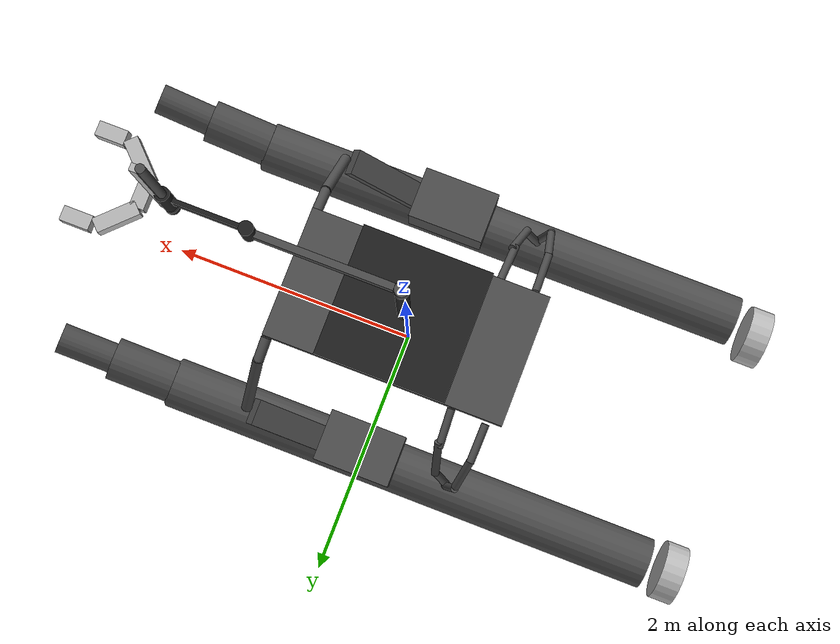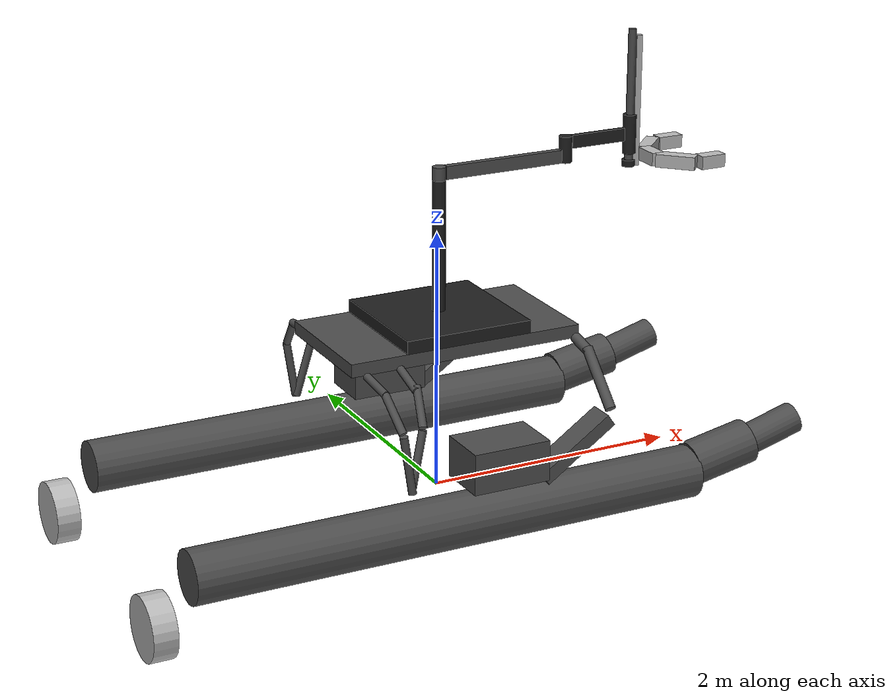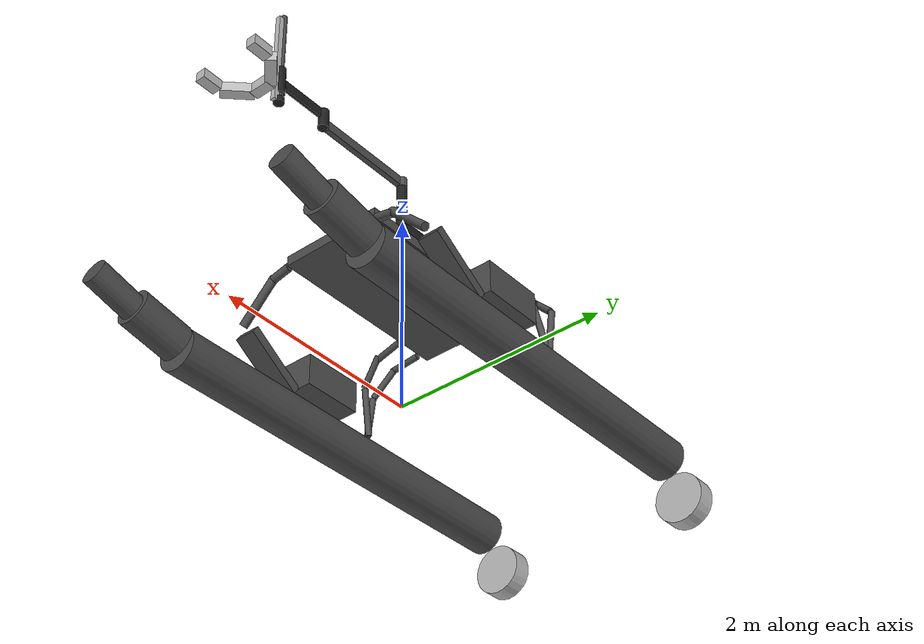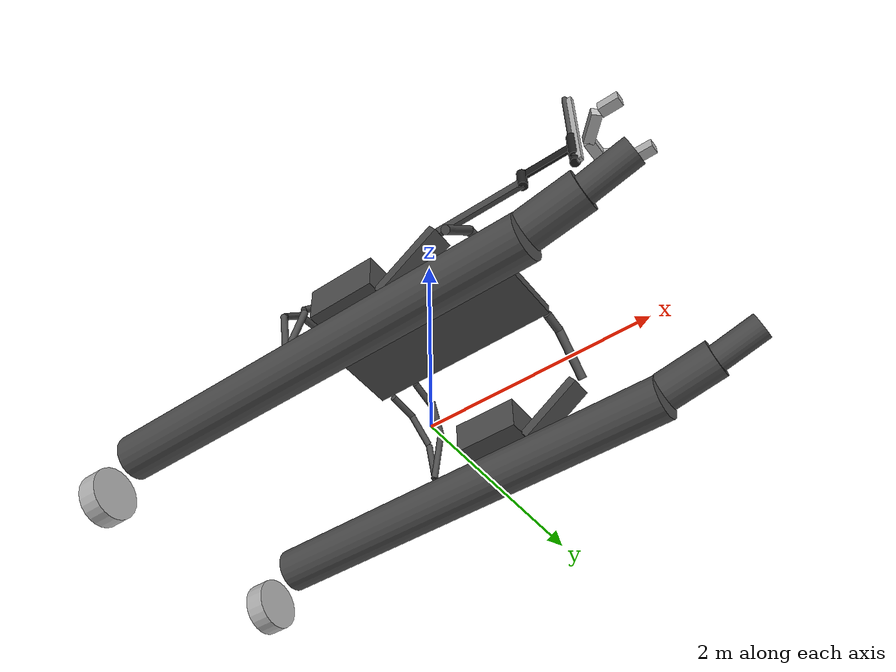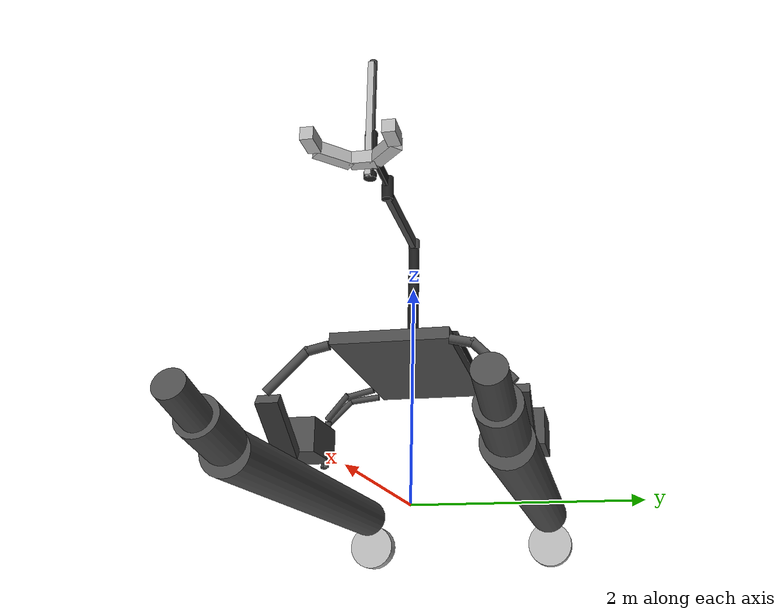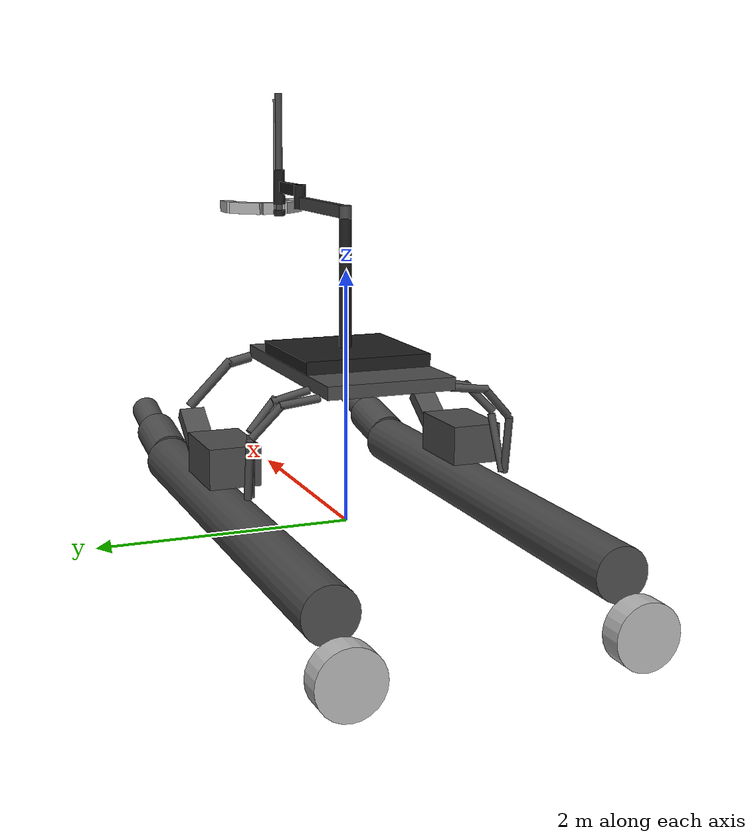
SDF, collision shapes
<sdf version='1.6'>
  <model name='boat'>
    <link name='base_link'>
      <pose>0 0 0 0 -0 0</pose>
      <inertial>
        <pose >0 0 0.124229 0 -0 0</pose>
        <mass>227</mass>
        <inertia>
          <ixx>181.42</ixx>
          <ixy>0</ixy>
          <ixz>0</ixz>
          <iyy>408.203</iyy>
          <iyz>0</iyz>
          <izz>495.037</izz>
        </inertia>
      </inertial>
      <collision name='base_link_fixed_joint_lump__left_float_collision'>
        <pose >-0.4 1.03 0.2 3.14159 1.57079 3.14159</pose>
        <geometry>
          <cylinder>
            <length>4</length>
            <radius>0.2</radius>
          </cylinder>
        </geometry>
      </collision>
      <collision name='base_link_fixed_joint_lump__left_mid_float_collision_1'>
        <pose>1.85 1.03 0.3 0 1.38 0</pose>
        <geometry>
          <cylinder>
            <length>0.5</length>
            <radius>0.17</radius>
          </cylinder>
        </geometry>
      </collision>
      <collision name='base_link_fixed_joint_lump__left_front_float_collision_2'>
        <pose>2.3 1.03 0.4 0 1.3 0</pose>
        <geometry>
          <cylinder>
            <length>0.45</length>
            <radius>0.12</radius>
          </cylinder>
        </geometry>
      </collision>
      <collision name='base_link_fixed_joint_lump__front_left_beam_lower_collision_3'>
        <pose>0.9 0.85 1 0.78 -0 0</pose>
        <geometry>
          <cylinder>
            <length>0.5</length>
            <radius>0.04</radius>
          </cylinder>
        </geometry>
      </collision>
      <collision name='base_link_fixed_joint_lump__front_left_beam_upper_collision_4'>
        <pose>0.9 0.6 1.18 1.35 -0 0</pose>
        <geometry>
          <cylinder>
            <length>0.2</length>
            <radius>0.04</radius>
          </cylinder>
        </geometry>
      </collision>
      <collision name='base_link_fixed_joint_lump__mid_left_beam_lower_collision_5'>
        <pose>-0.65 0.99 0.7 0.1 0.25 0</pose>
        <geometry>
          <cylinder>
            <length>0.45</length>
            <radius>0.03</radius>
          </cylinder>
        </geometry>
      </collision>
      <collision name='base_link_fixed_joint_lump__mid_left_beam_medium_collision_6'>
        <pose>-0.57 0.87 1.05 0.75 0.25 0</pose>
        <geometry>
          <cylinder>
            <length>0.32</length>
            <radius>0.03</radius>
          </cylinder>
        </geometry>
      </collision>
      <collision name='base_link_fixed_joint_lump__mid_left_beam_upper_collision_7'>
        <pose>-0.55 0.65 1.17 1.35 0.25 0</pose>
        <geometry>
          <cylinder>
            <length>0.3</length>
            <radius>0.03</radius>
          </cylinder>
        </geometry>
      </collision>
      <collision name='base_link_fixed_joint_lump__rear_left_beam_lower_collision_8'>
        <pose>-0.74 1.03 0.7 0 -0.15 0</pose>
        <geometry>
          <cylinder>
            <length>0.45</length>
            <radius>0.03</radius>
          </cylinder>
        </geometry>
      </collision>
      <collision name='base_link_fixed_joint_lump__rear_left_beam_medium_collision_9'>
        <pose>-0.79 0.91 1.05 0.75 -0.15 -0</pose>
        <geometry>
          <cylinder>
            <length>0.32</length>
            <radius>0.03</radius>
          </cylinder>
        </geometry>
      </collision>
      <collision name='base_link_fixed_joint_lump__rear_left_beam_upper_collision_10'>
        <pose>-0.81 0.67 1.18 1.45 -0.15 0</pose>
        <geometry>
          <cylinder>
            <length>0.3</length>
            <radius>0.03</radius>
          </cylinder>
        </geometry>
      </collision>
      <collision name='base_link_fixed_joint_lump__left_joint_collision_11'>
        <pose>0.58 1.03 0.6 0 -0.6 0</pose>
        <geometry>
          <box>
            <size>0.65 0.2 0.1</size>
          </box>
        </geometry>
      </collision>
      <collision name='base_link_fixed_joint_lump__right_float_collision_12'>
        <pose>-0.4 -1.03 0.2 3.14159 1.57079 3.14159</pose>
        <geometry>
          <cylinder>
            <length>4</length>
            <radius>0.2</radius>
          </cylinder>
        </geometry>
      </collision>
      <collision name='base_link_fixed_joint_lump__right_mid_float_collision_13'>
        <pose>1.85 -1.03 0.3 0 1.38 0</pose>
        <geometry>
          <cylinder>
            <length>0.5</length>
            <radius>0.17</radius>
          </cylinder>
        </geometry>
      </collision>
      <collision name='base_link_fixed_joint_lump__right_front_float_collision_14'>
        <pose>2.3 -1.03 0.4 0 1.3 0</pose>
        <geometry>
          <cylinder>
            <length>0.45</length>
            <radius>0.12</radius>
          </cylinder>
        </geometry>
      </collision>
      <collision name='base_link_fixed_joint_lump__front_right_beam_lower_collision_15'>
        <pose>0.9 -0.85 1 -0.78 0 0</pose>
        <geometry>
          <cylinder>
            <length>0.5</length>
            <radius>0.04</radius>
          </cylinder>
        </geometry>
      </collision>
      <collision name='base_link_fixed_joint_lump__front_right_beam_upper_collision_16'>
        <pose>0.9 -0.6 1.18 -1.35 0 0</pose>
        <geometry>
          <cylinder>
            <length>0.2</length>
            <radius>0.04</radius>
          </cylinder>
        </geometry>
      </collision>
      <collision name='base_link_fixed_joint_lump__mid_right_beam_lower_collision_17'>
        <pose>-0.65 -0.99 0.7 -0.1 0.25 0</pose>
        <geometry>
          <cylinder>
            <length>0.45</length>
            <radius>0.03</radius>
          </cylinder>
        </geometry>
      </collision>
      <collision name='base_link_fixed_joint_lump__mid_right_beam_medium_collision_18'>
        <pose>-0.57 -0.87 1.05 -0.75 0.25 0</pose>
        <geometry>
          <cylinder>
            <length>0.32</length>
            <radius>0.03</radius>
          </cylinder>
        </geometry>
      </collision>
      <collision name='base_link_fixed_joint_lump__mid_right_beam_upper_collision_19'>
        <pose>-0.55 -0.65 1.17 -1.35 0.25 0</pose>
        <geometry>
          <cylinder>
            <length>0.3</length>
            <radius>0.03</radius>
          </cylinder>
        </geometry>
      </collision>
      <collision name='base_link_fixed_joint_lump__rear_right_beam_lower_collision_20'>
        <pose>-0.74 -1.03 0.7 0 -0.15 0</pose>
        <geometry>
          <cylinder>
            <length>0.45</length>
            <radius>0.03</radius>
          </cylinder>
        </geometry>
      </collision>
      <collision name='base_link_fixed_joint_lump__rear_right_beam_medium_collision_21'>
        <pose>-0.79 -0.91 1.05 -0.75 -0.15 0</pose>
        <geometry>
          <cylinder>
            <length>0.32</length>
            <radius>0.03</radius>
          </cylinder>
        </geometry>
      </collision>
      <collision name='base_link_fixed_joint_lump__rear_right_beam_upper_collision_22'>
        <pose>-0.81 -0.67 1.18 -1.45 -0.15 0</pose>
        <geometry>
          <cylinder>
            <length>0.3</length>
            <radius>0.03</radius>
          </cylinder>
        </geometry>
      </collision>
      <collision name='base_link_fixed_joint_lump__right_joint_collision_23'>
        <pose>0.58 -1.03 0.6 0 -0.6 0</pose>
        <geometry>
          <box>
            <size>0.65 0.2 0.1</size>
          </box>
        </geometry>
      </collision>
      <collision name='base_link_fixed_joint_lump__top_base_collision_24'>
        <pose>0 0 1.25 0 -0 0</pose>
        <geometry>
          <box>
            <size>1.85 1 0.1</size>
          </box>
        </geometry>
      </collision>
      <collision name='base_link_fixed_joint_lump__left_battery_collision_collision_25'>
        <pose>0 1 0.6 0 -0 0</pose>
        <geometry>
          <box>
            <size>0.6 0.4 0.31</size>
          </box>
        </geometry>
      </collision>
      <collision name='base_link_fixed_joint_lump__right_battery_collision_collision_26'>
        <pose>0 -1 0.6 0 -0 0</pose>
        <geometry>
          <box>
            <size>0.6 0.4 0.31</size>
          </box>
        </geometry>
      </collision>
      <visual name='base_link_fixed_joint_lump__dummy_link_visual'>
        <pose>0 0 0 0 -0 0</pose>
        <geometry>
          <mesh>
            <scale>1 1 1</scale>
            <uri>model://boat/meshes/body.dae</uri>
          </mesh>
        </geometry>
      </visual>
      <visual name='base_link_fixed_joint_lump__left_battery_visual_visual_1'>
        <pose>0 -0.03 0 0 -0 0</pose>
        <geometry>
          <mesh>
            <scale>1 1 1</scale>
            <uri>model://boat/meshes/battery.dae</uri>
          </mesh>
        </geometry>
        <material>
          <script>
            <name>Gazebo/DarkGrey</name>
            <uri>__default__</uri>
          </script>
        </material>
      </visual>
      <visual name='base_link_fixed_joint_lump__right_battery_visual_visual_2'>
        <pose>0 -2.03 0 0 -0 0</pose>
        <geometry>
          <mesh>
            <scale>1 1 1</scale>
            <uri>model://boat/meshes/battery.dae</uri>
          </mesh>
        </geometry>
        <material>
          <script>
            <name>Gazebo/DarkGrey</name>
            <uri>__default__</uri>
          </script>
        </material>
      </visual>
      <visual name='right_engine_link_visual'>
        <pose>-2.37378 -1.02713 0.318237 0 -0 0</pose>
        <geometry>
          <mesh>
            <scale>1 1 1</scale>
            <uri>model://boat/meshes//engine.dae</uri>
          </mesh>
        </geometry>
      </visual>
      <visual name='left_engine_link_visual'>
        <pose>-2.37378 1.02713 0.318237 0 -0 0</pose>
        <geometry>
          <mesh>
            <scale>1 1 1</scale>
            <uri>model://boat/meshes//engine.dae</uri>
          </mesh>
        </geometry>
      </visual>
    </link>
    <link name='left_propeller_link'>
      <pose>-2.65193 1.02713 -0.191134 0 1.57079 0</pose>
      <inertial>
        <pose>0 0 0 0 -0 0</pose>
        <mass>0.5</mass>
        <inertia>
          <ixx>0.008545</ixx>
          <ixy>0</ixy>
          <ixz>0</ixz>
          <iyy>0.008545</iyy>
          <iyz>0</iyz>
          <izz>0.0144</izz>
        </inertia>
      </inertial>
      <collision name='left_propeller_link_fixed_joint_lump__left_propeller_collision_collision'>
        <pose>-0.08 0 0 3.14159 0.0 3.14159</pose>
        <geometry>
          <cylinder>
            <length>0.18</length>
            <radius>0.24</radius>
          </cylinder>
        </geometry>
      </collision>
      <visual name='left_propeller_link_visual'>
        <pose>0 0 0 0 -1.57079 0</pose>
        <geometry>
          <mesh>
            <scale>1 1 1</scale>
            <uri>model://boat/meshes/propeller.dae</uri>
          </mesh>
        </geometry>
      </visual>
    </link>

    <joint name='left_engine_propeller_joint' type='revolute'>
      <child>left_propeller_link</child>
      <parent>base_link</parent>
      <axis>
        <xyz>1 0 0</xyz>
        <limit>
          <lower>-1e+16</lower>
          <upper>1e+16</upper>
        </limit>
        <dynamics>
          <spring_reference>0</spring_reference>
          <spring_stiffness>0</spring_stiffness>
        </dynamics>
        <use_parent_model_frame>1</use_parent_model_frame>
      </axis>
    </joint>
    <link name='right_propeller_link'>
      <pose>-2.65193 -1.02713 -0.191134 0 1.57079 0</pose>
      <inertial>
        <pose>0 0 0 0 -0 0</pose>
        <mass>0.5</mass>
        <inertia>
          <ixx>0.008545</ixx>
          <ixy>0</ixy>
          <ixz>0</ixz>
          <iyy>0.008545</iyy>
          <iyz>0</iyz>
          <izz>0.0144</izz>
        </inertia>
      </inertial>
      <collision name='right_propeller_link_fixed_joint_lump__right_propeller_collision_collision'>
        <pose>-0.08 0 0 3.14159 0.0 3.14159</pose>
        <geometry>
          <cylinder>
            <length>0.18</length>
            <radius>0.24</radius>
          </cylinder>
        </geometry>
      </collision>
      <visual name='right_propeller_link_visual'>
        <pose>0 0 0 0 -1.57079 0</pose>
        <geometry>
          <mesh>
            <scale>1 1 1</scale>
            <uri>model://boat/meshes/propeller.dae</uri>
          </mesh>
        </geometry>
      </visual>
    </link>
    <link name='boat/imu_link'>
      <pose>0 0 0 0 0 0</pose>
      <inertial>
        <pose>0 0 0 0 0 0</pose>
        <mass>0.015</mass>
        <inertia>
          <ixx>1e-05</ixx>
          <ixy>0</ixy>
          <ixz>0</ixz>
          <iyy>1e-05</iyy>
          <iyz>0</iyz>
          <izz>1e-05</izz>
        </inertia>
      </inertial>
    </link>
    <joint name='right_engine_propeller_joint' type='revolute'>
      <child>right_propeller_link</child>
      <parent>base_link</parent>
      <axis>
        <xyz>1 0 0</xyz>
        <limit>
          <lower>-1e+16</lower>
          <upper>1e+16</upper>
        </limit>
        <dynamics>
          <spring_reference>0</spring_reference>
          <spring_stiffness>0</spring_stiffness>
        </dynamics>
        <use_parent_model_frame>1</use_parent_model_frame>
      </axis>
    </joint>
    <joint name='boat/imu_joint' type='revolute'>
      <child>boat/imu_link</child>
      <parent>base_link</parent>
      <axis>
        <xyz>1 0 0</xyz>
        <limit>
          <lower>0</lower>
          <upper>0</upper>
          <effort>0</effort>
          <velocity>0</velocity>
        </limit>
        <dynamics>
          <spring_reference>0</spring_reference>
          <spring_stiffness>0</spring_stiffness>
        </dynamics>
        <use_parent_model_frame>1</use_parent_model_frame>
      </axis>
    </joint>

    <link name="realsense_link">
      <pose>0.3 0 1.4 0 0 0</pose>

      <inertial>
        <pose>0 0 0 0 0 0</pose>
        <mass>0.015</mass>
        <inertia>
          <ixx>1e-05</ixx>
          <ixy>0</ixy>
          <ixz>0</ixz>
          <iyy>1e-05</iyy>
          <iyz>0</iyz>
          <izz>1e-05</izz>
        </inertia>
      </inertial>

      <visual name='visual'>
        <geometry>
          <box>
            <size>0.01 0.01 0.01</size>
          </box>
        </geometry>
      </visual>

      <sensor name="depth_camera" type="depth">
        <update_rate>30</update_rate>
        <camera>
          <horizontal_fov>1.02974</horizontal_fov>
          <image>
            <format>R8G8B8</format>
            <width>640</width>
            <height>480</height>
          </image>
          <clip>
            <near>0.5</near>
            <far>18</far>
          </clip>
        </camera>
        <plugin filename="libgazebo_ros_openni_kinect.so" name="camera_controller">
          <cameraName>camera</cameraName>
          <alwaysOn>true</alwaysOn>
          <updateRate>20</updateRate>
          <pointCloudCutoff>0.2</pointCloudCutoff>
          <pointCloudCutoffMax>20</pointCloudCutoffMax>
          <imageTopicName>rgb/image_raw</imageTopicName>
          <cameraInfoTopicName>rgb/camera_info</cameraInfoTopicName>
          <depthImageTopicName>depth/image_raw</depthImageTopicName>
          <depthImageCameraInfoTopicName>depth/camera_info</depthImageCameraInfoTopicName>
          <pointCloudTopicName>depth/points</pointCloudTopicName>
          <frameName>camera_link</frameName>
          <distortion_k1>0.0</distortion_k1>
          <distortion_k2>0.0</distortion_k2>
          <distortion_k3>0.0</distortion_k3>
          <distortion_t1>0.0</distortion_t1>
          <distortion_t2>0.0</distortion_t2>
        </plugin>
      </sensor>
    </link>

    <joint type="fixed" name="realsense_joint">
      <parent>base_link</parent>
      <child>realsense_link</child>
      <pose>0 0 0 0 0 0</pose>
      <axis>
        <xyz>0 0 1</xyz>
      </axis>
    </joint>

    <include>
      <uri>model://gps</uri>
      <pose>0 0 0.12 0 0 0</pose>
      <name>gps</name>
    </include>
    <joint name='gps_joint' type='fixed'>
      <child>gps::link</child>
      <parent>base_link</parent>
    </joint>

     <model name='simple_arm_gripper'>
      <frame name='simple_arm::__model__' attached_to='simple_arm::arm_base'>
        <pose relative_to='__model__'>0 0 0 0 -0 0</pose>
      </frame>
      <link name='simple_arm::arm_base'>
        <inertial>
          <pose>0 0 0.00099 0 -0 0</pose>
          <inertia>
            <ixx>1.11</ixx>
            <ixy>0</ixy>
            <ixz>0</ixz>
            <iyy>3.11</iyy>
            <iyz>0</iyz>
            <izz>1.01</izz>
          </inertia>
          <mass>3</mass>
        </inertial>
        <collision name='arm_base_geom'>
          <pose>0 0 0.05 0 -0 0</pose>
          <geometry>
            <box>
              <size>1 1 0.1</size>
            </box>
          </geometry>
          <max_contacts>10</max_contacts>
          <surface>
            <contact>
              <ode/>
            </contact>
            <bounce/>
            <friction>
              <torsional>
                <ode/>
              </torsional>
              <ode/>
            </friction>
          </surface>
        </collision>
        <visual name='arm_base_geom_visual'>
          <pose>0 0 0.05 0 -0 0</pose>
          <geometry>
            <box>
              <size>1 1 0.1</size>
            </box>
          </geometry>
          <material>
            <script>
              <uri>file://media/materials/scripts/gazebo.material</uri>
              <name>Gazebo/Black</name>
            </script>
          </material>
        </visual>
        <collision name='arm_base_geom_arm_trunk'>
          <pose>0 0 0.6 0 -0 0</pose>
          <geometry>
            <cylinder>
              <radius>0.05</radius>
              <length>1</length>
            </cylinder>
          </geometry>
          <max_contacts>10</max_contacts>
          <surface>
            <contact>
              <ode/>
            </contact>
            <bounce/>
            <friction>
              <torsional>
                <ode/>
              </torsional>
              <ode/>
            </friction>
          </surface>
        </collision>
        <visual name='arm_base_geom_arm_trunk_visual'>
          <pose>0 0 0.6 0 -0 0</pose>
          <geometry>
            <cylinder>
              <radius>0.05</radius>
              <length>1</length>
            </cylinder>
          </geometry>
          <material>
            <script>
              <uri>file://media/materials/scripts/gazebo.material</uri>
              <name>Gazebo/Black</name>
            </script>
          </material>
        </visual>
        <pose>0 0 0 0 -0 0</pose>
        <self_collide>0</self_collide>
        <enable_wind>0</enable_wind>
        <kinematic>0</kinematic>
      </link>
      <link name='simple_arm::arm_shoulder_pan'>
        <pose>0 0 1.1 0 -0 0</pose>
        <inertial>
          <pose>0.045455 0 0 0 -0 0</pose>
          <inertia>
            <ixx>0.011</ixx>
            <ixy>0</ixy>
            <ixz>0</ixz>
            <iyy>0.0225</iyy>
            <iyz>0</iyz>
            <izz>0.0135</izz>
          </inertia>
          <mass>1</mass>
        </inertial>
        <collision name='arm_shoulder_pan_geom'>
          <pose>0 0 0.05 0 -0 0</pose>
          <geometry>
            <cylinder>
              <radius>0.05</radius>
              <length>0.1</length>
            </cylinder>
          </geometry>
          <max_contacts>10</max_contacts>
          <surface>
            <contact>
              <ode/>
            </contact>
            <bounce/>
            <friction>
              <torsional>
                <ode/>
              </torsional>
              <ode/>
            </friction>
          </surface>
        </collision>
        <visual name='arm_shoulder_pan_geom_visual'>
          <pose>0 0 0.05 0 -0 0</pose>
          <geometry>
            <cylinder>
              <radius>0.05</radius>
              <length>0.1</length>
            </cylinder>
          </geometry>
          <material>
            <script>
              <uri>file://media/materials/scripts/gazebo.material</uri>
              <name>Gazebo/DarkGrey</name>
            </script>
          </material>
        </visual>
        <collision name='arm_shoulder_pan_geom_arm_shoulder'>
          <pose>0.55 0 0.05 0 -0 0</pose>
          <geometry>
            <box>
              <size>1 0.05 0.1</size>
            </box>
          </geometry>
          <max_contacts>10</max_contacts>
          <surface>
            <contact>
              <ode/>
            </contact>
            <bounce/>
            <friction>
              <torsional>
                <ode/>
              </torsional>
              <ode/>
            </friction>
          </surface>
        </collision>
        <visual name='arm_shoulder_pan_geom_arm_shoulder_visual'>
          <pose>0.55 0 0.05 0 -0 0</pose>
          <geometry>
            <box>
              <size>1 0.05 0.1</size>
            </box>
          </geometry>
          <material>
            <script>
              <uri>file://media/materials/scripts/gazebo.material</uri>
              <name>Gazebo/DarkGrey</name>
            </script>
          </material>
        </visual>
        <self_collide>0</self_collide>
        <enable_wind>0</enable_wind>
        <kinematic>0</kinematic>
      </link>
      <link name='simple_arm::arm_elbow_pan'>
        <pose>1.05 0 1.1 0 -0 0</pose>
        <inertial>
          <pose>0.0875 0 0.083333 0 -0 0</pose>
          <inertia>
            <ixx>0.031</ixx>
            <ixy>0</ixy>
            <ixz>0.005</ixz>
            <iyy>0.07275</iyy>
            <iyz>0</iyz>
            <izz>0.04475</izz>
          </inertia>
          <mass>1</mass>
        </inertial>
        <collision name='arm_elbow_pan_geom'>
          <pose>0 0 0.1 0 -0 0</pose>
          <geometry>
            <cylinder>
              <radius>0.05</radius>
              <length>0.2</length>
            </cylinder>
          </geometry>
          <max_contacts>10</max_contacts>
          <surface>
            <contact>
              <ode/>
            </contact>
            <bounce/>
            <friction>
              <torsional>
                <ode/>
              </torsional>
              <ode/>
            </friction>
          </surface>
        </collision>
        <visual name='arm_elbow_pan_geom_visual'>
          <pose>0 0 0.1 0 -0 0</pose>
          <geometry>
            <cylinder>
              <radius>0.05</radius>
              <length>0.2</length>
            </cylinder>
          </geometry>
          <material>
            <script>
              <uri>file://media/materials/scripts/gazebo.material</uri>
              <name>Gazebo/Black</name>
            </script>
          </material>
        </visual>
        <collision name='arm_elbow_pan_geom_arm_elbow'>
          <pose>0.3 0 0.15 0 -0 0</pose>
          <geometry>
            <box>
              <size>0.5 0.03 0.1</size>
            </box>
          </geometry>
          <max_contacts>10</max_contacts>
          <surface>
            <contact>
              <ode/>
            </contact>
            <bounce/>
            <friction>
              <torsional>
                <ode/>
              </torsional>
              <ode/>
            </friction>
          </surface>
        </collision>
        <visual name='arm_elbow_pan_geom_arm_elbow_visual'>
          <pose>0.3 0 0.15 0 -0 0</pose>
          <geometry>
            <box>
              <size>0.5 0.03 0.1</size>
            </box>
          </geometry>
          <material>
            <script>
              <uri>file://media/materials/scripts/gazebo.material</uri>
              <name>Gazebo/DarkGrey</name>
            </script>
          </material>
        </visual>
        <collision name='arm_elbow_pan_geom_arm_wrist'>
          <pose>0.55 0 0.15 0 -0 0</pose>
          <geometry>
            <cylinder>
              <radius>0.05</radius>
              <length>0.3</length>
            </cylinder>
          </geometry>
          <max_contacts>10</max_contacts>
          <surface>
            <contact>
              <ode/>
            </contact>
            <bounce/>
            <friction>
              <torsional>
                <ode/>
              </torsional>
              <ode/>
            </friction>
          </surface>
        </collision>
        <visual name='arm_elbow_pan_geom_arm_wrist_visual'>
          <pose>0.55 0 0.15 0 -0 0</pose>
          <geometry>
            <cylinder>
              <radius>0.05</radius>
              <length>0.3</length>
            </cylinder>
          </geometry>
          <material>
            <script>
              <uri>file://media/materials/scripts/gazebo.material</uri>
              <name>Gazebo/Black</name>
            </script>
          </material>
        </visual>
        <self_collide>0</self_collide>
        <enable_wind>0</enable_wind>
        <kinematic>0</kinematic>
      </link>
      <link name='simple_arm::arm_wrist_lift'>
        <pose>1.6 0 1.05 0 -0 0</pose>
        <inertial>
          <pose>0 0 0 0 -0 0</pose>
          <inertia>
            <ixx>0.01</ixx>
            <ixy>0</ixy>
            <ixz>0</ixz>
            <iyy>0.01</iyy>
            <iyz>0</iyz>
            <izz>0.001</izz>
          </inertia>
          <mass>0.1</mass>
        </inertial>
        <collision name='arm_wrist_lift_geom'>
          <pose>0 0 0.5 0 -0 0</pose>
          <geometry>
            <cylinder>
              <radius>0.03</radius>
              <length>1</length>
            </cylinder>
          </geometry>
          <max_contacts>10</max_contacts>
          <surface>
            <contact>
              <ode/>
            </contact>
            <bounce/>
            <friction>
              <torsional>
                <ode/>
              </torsional>
              <ode/>
            </friction>
          </surface>
        </collision>
        <visual name='arm_wrist_lift_geom_visual'>
          <pose>0 0 0.5 0 -0 0</pose>
          <geometry>
            <cylinder>
              <radius>0.03</radius>
              <length>1</length>
            </cylinder>
          </geometry>
          <material>
            <script>
              <uri>file://media/materials/scripts/gazebo.material</uri>
              <name>Gazebo/DarkGrey</name>
            </script>
          </material>
        </visual>
        <self_collide>0</self_collide>
        <enable_wind>0</enable_wind>
        <kinematic>0</kinematic>
      </link>
      <link name='simple_arm::arm_wrist_roll'>
        <pose>1.6 0 1 0 -0 0</pose>
        <inertial>
          <pose>0 0 0 0 -0 0</pose>
          <inertia>
            <ixx>0.01</ixx>
            <ixy>0</ixy>
            <ixz>0</ixz>
            <iyy>0.01</iyy>
            <iyz>0</iyz>
            <izz>0.001</izz>
          </inertia>
          <mass>0.1</mass>
        </inertial>
        <collision name='arm_wrist_roll_geom'>
          <pose>0 0 0.025 0 -0 0</pose>
          <geometry>
            <cylinder>
              <radius>0.05</radius>
              <length>0.05</length>
            </cylinder>
          </geometry>
          <max_contacts>10</max_contacts>
          <surface>
            <contact>
              <ode/>
            </contact>
            <bounce/>
            <friction>
              <torsional>
                <ode/>
              </torsional>
              <ode/>
            </friction>
          </surface>
        </collision>
        <visual name='arm_wrist_roll_geom_visual'>
          <pose>0 0 0.025 0 -0 0</pose>
          <geometry>
            <cylinder>
              <radius>0.05</radius>
              <length>0.05</length>
            </cylinder>
          </geometry>
          <material>
            <script>
              <uri>file://media/materials/scripts/gazebo.material</uri>
              <name>Gazebo/Black</name>
            </script>
          </material>
        </visual>
        <self_collide>0</self_collide>
        <enable_wind>0</enable_wind>
        <kinematic>0</kinematic>
      </link>
      <joint name='simple_arm::arm_shoulder_pan_joint' type='revolute'>
        <parent>simple_arm::arm_base</parent>
        <child>simple_arm::arm_shoulder_pan</child>
        <axis>
          <dynamics>
            <damping>1</damping>
            <friction>0</friction>
            <spring_reference>0</spring_reference>
            <spring_stiffness>0</spring_stiffness>
          </dynamics>
          <xyz>0 0 1</xyz>
          <limit>
            <lower>-1e+16</lower>
            <upper>1e+16</upper>
          </limit>
        </axis>
      </joint>
      <joint name='simple_arm::arm_elbow_pan_joint' type='revolute'>
        <parent>simple_arm::arm_shoulder_pan</parent>
        <child>simple_arm::arm_elbow_pan</child>
        <axis>
          <dynamics>
            <damping>1</damping>
            <friction>0</friction>
            <spring_reference>0</spring_reference>
            <spring_stiffness>0</spring_stiffness>
          </dynamics>
          <xyz>0 0 1</xyz>
          <limit>
            <lower>-1e+16</lower>
            <upper>1e+16</upper>
          </limit>
        </axis>
      </joint>
      <joint name='simple_arm::arm_wrist_lift_joint' type='prismatic'>
        <parent>simple_arm::arm_elbow_pan</parent>
        <child>simple_arm::arm_wrist_lift</child>
        <axis>
          <dynamics>
            <damping>1</damping>
            <friction>0</friction>
            <spring_reference>0</spring_reference>
            <spring_stiffness>0</spring_stiffness>
          </dynamics>
          <limit>
            <lower>-0.8</lower>
            <upper>0.1</upper>
          </limit>
          <xyz>0 0 1</xyz>
        </axis>
      </joint>
      <joint name='simple_arm::arm_wrist_roll_joint' type='revolute'>
        <parent>simple_arm::arm_wrist_lift</parent>
        <child>simple_arm::arm_wrist_roll</child>
        <axis>
          <dynamics>
            <damping>1</damping>
            <friction>0</friction>
            <spring_reference>0</spring_reference>
            <spring_stiffness>0</spring_stiffness>
          </dynamics>
          <limit>
            <lower>-2.99999</lower>
            <upper>2.99999</upper>
          </limit>
          <xyz>0 0 1</xyz>
        </axis>
      </joint>

      <frame name='simple_gripper::__model__' attached_to='simple_gripper::riser'>
        <pose relative_to='__model__'>1.8 0 1 0 -0 0</pose>
      </frame>
      <link name='simple_gripper::riser'>
        <pose>1.65 0 1.5 0 -0 0</pose>
        <inertial>
          <mass>1</mass>
          <pose>0 0 0 0 -0 0</pose>
          <inertia>
            <ixx>1</ixx>
            <ixy>0</ixy>
            <ixz>0</ixz>
            <iyy>1</iyy>
            <iyz>0</iyz>
            <izz>1</izz>
          </inertia>
        </inertial>
        <collision name='collision'>
          <geometry>
            <box>
              <size>0.05 0.05 1</size>
            </box>
          </geometry>
          <surface>
            <contact>
              <ode>
                <max_vel>0</max_vel>
              </ode>
            </contact>
            <bounce/>
            <friction>
              <torsional>
                <ode/>
              </torsional>
              <ode/>
            </friction>
          </surface>
          <max_contacts>10</max_contacts>
        </collision>
        <visual name='visual'>
          <geometry>
            <box>
              <size>0.05 0.05 1</size>
            </box>
          </geometry>
        </visual>
        <self_collide>0</self_collide>
        <enable_wind>0</enable_wind>
        <kinematic>0</kinematic>
      </link>
      <link name='simple_gripper::palm'>
        <pose>1.8 0 1.05 0 -0 0</pose>
        <inertial>
          <mass>0.5</mass>
          <pose>0 0 0 0 -0 0</pose>
          <inertia>
            <ixx>1</ixx>
            <ixy>0</ixy>
            <ixz>0</ixz>
            <iyy>1</iyy>
            <iyz>0</iyz>
            <izz>1</izz>
          </inertia>
        </inertial>
        <collision name='collision'>
          <geometry>
            <box>
              <size>0.1 0.2 0.1</size>
            </box>
          </geometry>
          <surface>
            <contact>
              <ode>
                <max_vel>0</max_vel>
              </ode>
            </contact>
            <bounce/>
            <friction>
              <torsional>
                <ode/>
              </torsional>
              <ode/>
            </friction>
          </surface>
          <max_contacts>10</max_contacts>
        </collision>
        <visual name='visual'>
          <geometry>
            <box>
              <size>0.1 0.2 0.1</size>
            </box>
          </geometry>
        </visual>
        <self_collide>0</self_collide>
        <enable_wind>0</enable_wind>
        <kinematic>0</kinematic>
      </link>
      <link name='simple_gripper::left_finger'>
        <pose>1.9 0.2 1.05 0 0 -0.78539</pose>
        <inertial>
          <mass>0.1</mass>
          <pose>0 0 0 0 -0 0</pose>
          <inertia>
            <ixx>1</ixx>
            <ixy>0</ixy>
            <ixz>0</ixz>
            <iyy>1</iyy>
            <iyz>0</iyz>
            <izz>1</izz>
          </inertia>
        </inertial>
        <collision name='collision'>
          <geometry>
            <box>
              <size>0.1 0.3 0.1</size>
            </box>
          </geometry>
          <surface>
            <friction>
              <ode>
                <mu>0.1</mu>
                <mu2>0</mu2>
              </ode>
              <torsional>
                <ode/>
              </torsional>
            </friction>
            <contact>
              <ode>
                <max_vel>0</max_vel>
              </ode>
            </contact>
            <bounce/>
          </surface>
          <max_contacts>10</max_contacts>
        </collision>
        <visual name='visual'>
          <geometry>
            <box>
              <size>0.1 0.3 0.1</size>
            </box>
          </geometry>
        </visual>
        <self_collide>0</self_collide>
        <enable_wind>0</enable_wind>
        <kinematic>0</kinematic>
      </link>
      <link name='simple_gripper::left_finger_tip'>
        <pose>2.136 0.3 1.05 0 -0 1.5707</pose>
        <inertial>
          <mass>0.5</mass>
          <pose>0 0 0 0 -0 0</pose>
          <inertia>
            <ixx>1</ixx>
            <ixy>0</ixy>
            <ixz>0</ixz>
            <iyy>1</iyy>
            <iyz>0</iyz>
            <izz>1</izz>
          </inertia>
        </inertial>
        <collision name='collision'>
          <geometry>
            <box>
              <size>0.1 0.2 0.1</size>
            </box>
          </geometry>
          <surface>
            <friction>
              <ode>
                <mu>0.1</mu>
                <mu2>0</mu2>
              </ode>
              <torsional>
                <ode/>
              </torsional>
            </friction>
            <contact>
              <ode>
                <max_vel>0</max_vel>
              </ode>
            </contact>
            <bounce/>
          </surface>
          <max_contacts>10</max_contacts>
        </collision>
        <visual name='visual'>
          <geometry>
            <box>
              <size>0.1 0.2 0.1</size>
            </box>
          </geometry>
        </visual>
        <self_collide>0</self_collide>
        <enable_wind>0</enable_wind>
        <kinematic>0</kinematic>
      </link>
      <link name='simple_gripper::right_finger'>
        <pose>1.9 -0.2 1.05 0 -0 0.78539</pose>
        <inertial>
          <mass>0.1</mass>
          <pose>0 0 0 0 -0 0</pose>
          <inertia>
            <ixx>1</ixx>
            <ixy>0</ixy>
            <ixz>0</ixz>
            <iyy>1</iyy>
            <iyz>0</iyz>
            <izz>1</izz>
          </inertia>
        </inertial>
        <collision name='collision'>
          <geometry>
            <box>
              <size>0.1 0.3 0.1</size>
            </box>
          </geometry>
          <surface>
            <friction>
              <ode>
                <mu>0.1</mu>
                <mu2>0</mu2>
              </ode>
              <torsional>
                <ode/>
              </torsional>
            </friction>
            <contact>
              <ode>
                <max_vel>0</max_vel>
              </ode>
            </contact>
            <bounce/>
          </surface>
          <max_contacts>10</max_contacts>
        </collision>
        <visual name='visual'>
          <geometry>
            <box>
              <size>0.1 0.3 0.1</size>
            </box>
          </geometry>
        </visual>
        <self_collide>0</self_collide>
        <enable_wind>0</enable_wind>
        <kinematic>0</kinematic>
      </link>
      <link name='simple_gripper::right_finger_tip'>
        <pose>2.136 -0.3 1.05 0 -0 1.5707</pose>
        <inertial>
          <mass>0.1</mass>
          <pose>0 0 0 0 -0 0</pose>
          <inertia>
            <ixx>1</ixx>
            <ixy>0</ixy>
            <ixz>0</ixz>
            <iyy>1</iyy>
            <iyz>0</iyz>
            <izz>1</izz>
          </inertia>
        </inertial>
        <collision name='collision'>
          <geometry>
            <box>
              <size>0.1 0.2 0.1</size>
            </box>
          </geometry>
          <surface>
            <friction>
              <ode>
                <mu>0.1</mu>
                <mu2>0</mu2>
              </ode>
              <torsional>
                <ode/>
              </torsional>
            </friction>
            <contact>
              <ode>
                <max_vel>0</max_vel>
              </ode>
            </contact>
            <bounce/>
          </surface>
          <max_contacts>10</max_contacts>
        </collision>
        <visual name='visual'>
          <geometry>
            <box>
              <size>0.1 0.2 0.1</size>
            </box>
          </geometry>
        </visual>
        <self_collide>0</self_collide>
        <enable_wind>0</enable_wind>
        <kinematic>0</kinematic>
      </link>
      <joint name='simple_gripper::palm_left_finger_joint' type='revolute'>
        <pose>0 -0.15 0 0 -0 0</pose>
        <child>simple_gripper::left_finger</child>
        <parent>simple_gripper::palm</parent>
        <axis>
          <limit>
            <lower>-0.8</lower>
            <upper>0.8</upper>
          </limit>
          <xyz>0 0 1</xyz>
          <dynamics>
            <spring_reference>0</spring_reference>
            <spring_stiffness>0</spring_stiffness>
          </dynamics>
        </axis>
      </joint>
      <joint name='simple_gripper::left_finger_tip_joint' type='revolute'>
        <pose>0 0.1 0 0 -0 0</pose>
        <child>simple_gripper::left_finger_tip</child>
        <parent>simple_gripper::left_finger</parent>
        <axis>
          <limit>
            <lower>-0.8</lower>
            <upper>0.8</upper>
          </limit>
          <xyz>0 0 1</xyz>
          <dynamics>
            <spring_reference>0</spring_reference>
            <spring_stiffness>0</spring_stiffness>
          </dynamics>
        </axis>
      </joint>
      <joint name='simple_gripper::palm_right_finger_joint' type='revolute'>
        <pose>0 0.15 0 0 -0 0</pose>
        <child>simple_gripper::right_finger</child>
        <parent>simple_gripper::palm</parent>
        <axis>
          <limit>
            <lower>-0.8</lower>
            <upper>0.8</upper>
          </limit>
          <xyz>0 0 1</xyz>
          <dynamics>
            <spring_reference>0</spring_reference>
            <spring_stiffness>0</spring_stiffness>
          </dynamics>
        </axis>
      </joint>
      <joint name='simple_gripper::right_finger_tip_joint' type='revolute'>
        <pose>0 0.1 0 0 -0 0</pose>
        <child>simple_gripper::right_finger_tip</child>
        <parent>simple_gripper::right_finger</parent>
        <axis>
          <limit>
            <lower>-0.8</lower>
            <upper>0.8</upper>
          </limit>
          <xyz>0 0 1</xyz>
          <dynamics>
            <spring_reference>0</spring_reference>
            <spring_stiffness>0</spring_stiffness>
          </dynamics>
        </axis>
      </joint>
      <joint name='simple_gripper::palm_riser_joint' type='prismatic'>
        <child>simple_gripper::palm</child>
        <parent>simple_gripper::riser</parent>
        <axis>
          <limit>
            <lower>0</lower>
            <upper>0.9</upper>
          </limit>
          <xyz>0 0 1</xyz>
          <dynamics>
            <spring_reference>0</spring_reference>
            <spring_stiffness>0</spring_stiffness>
          </dynamics>
        </axis>
      </joint>
      <gripper name='simple_gripper'>
        <grasp_check>
          <detach_steps>40</detach_steps>
          <attach_steps>20</attach_steps>
          <min_contact_count>2</min_contact_count>
        </grasp_check>
        <gripper_link>simple_gripper::right_finger</gripper_link>
        <gripper_link>simple_gripper::right_finger_tip</gripper_link>
        <gripper_link>simple_gripper::left_finger</gripper_link>
        <gripper_link>simple_gripper::left_finger_tip</gripper_link>
        <palm_link>simple_gripper::palm</palm_link>
      </gripper>

      <joint name='arm_gripper_joint' type='revolute'>
        <parent>simple_arm::arm_wrist_roll</parent>
        <child>simple_gripper::riser</child>
        <axis>
          <limit>
            <lower>0</lower>
            <upper>0</upper>
          </limit>
          <xyz expressed_in='__model__'>0 0 1</xyz>
          <dynamics>
            <spring_reference>0</spring_reference>
            <spring_stiffness>0</spring_stiffness>
          </dynamics>
        </axis>
      </joint>
      <pose>0.018417 0.000758 1.29859 0 -0 0</pose>
      <plugin name='simple_arm_plugin' filename='libgazebo_usv_robot_arm_control_plugin.so'>
        <RobotarmSubTopic>your_topic_name</RobotarmSubTopic>
      </plugin>

    </model>
    <joint name='base_link_JOINT_0' type='fixed'>
      <parent>base_link</parent>
      <child>simple_arm_gripper::simple_arm::arm_base</child>
      <pose>0 0 0 0 -0 0</pose>
      <physics>
        <ode>
          <limit>
            <cfm>0</cfm>
            <erp>0.2</erp>
          </limit>
          <suspension>
            <cfm>0</cfm>
            <erp>0.2</erp>
          </suspension>
        </ode>
      </physics>
    </joint>

    <plugin name='gazebo_imu_plugin' filename='libgazebo_imu_plugin.so'>
      <robotNamespace></robotNamespace>
      <linkName>boat/imu_link</linkName>
      <imuTopic>/imu</imuTopic>
      <gyroscopeNoiseDensity>0.0003394</gyroscopeNoiseDensity>
      <gyroscopeRandomWalk>3.8785e-05</gyroscopeRandomWalk>
      <gyroscopeBiasCorrelationTime>1000.0</gyroscopeBiasCorrelationTime>
      <gyroscopeTurnOnBiasSigma>0.0087</gyroscopeTurnOnBiasSigma>
      <accelerometerNoiseDensity>0.004</accelerometerNoiseDensity>
      <accelerometerRandomWalk>0.006</accelerometerRandomWalk>
      <accelerometerBiasCorrelationTime>300.0</accelerometerBiasCorrelationTime>
      <accelerometerTurnOnBiasSigma>0.196</accelerometerTurnOnBiasSigma>
    </plugin>
    <plugin name='magnetometer_plugin' filename='libgazebo_magnetometer_plugin.so'>
      <robotNamespace/>
      <pubRate>100</pubRate>
      <noiseDensity>0.0004</noiseDensity>
      <randomWalk>6.4e-06</randomWalk>
      <biasCorrelationTime>600</biasCorrelationTime>
      <magTopic>/mag</magTopic>
    </plugin>
    <plugin name='barometer_plugin' filename='libgazebo_barometer_plugin.so'>
      <robotNamespace/>
      <pubRate>50</pubRate>
      <baroTopic>/baro</baroTopic>
    </plugin>
    <static>0</static>
    <plugin name='left_motor_model' filename='libgazebo_motor_model.so'>
      <robotNamespace></robotNamespace>
      <jointName>left_engine_propeller_joint</jointName>
      <linkName>left_propeller_link</linkName>
      <turningDirection>cw</turningDirection>
      <timeConstantUp>0.0125</timeConstantUp>
      <timeConstantDown>0.025</timeConstantDown>
      <maxRotVelocity>1100</maxRotVelocity>
      <motorConstant>8.54858e-02</motorConstant>
      <momentConstant>0.01</momentConstant>
      <commandSubTopic>/gazebo/command/motor_speed</commandSubTopic>
      <motorNumber>0</motorNumber>
      <rotorDragCoefficient>0.000806428</rotorDragCoefficient>
      <rollingMomentCoefficient>1e-06</rollingMomentCoefficient>
      <motorSpeedPubTopic>/motor_speed/0</motorSpeedPubTopic>
      <rotorVelocitySlowdownSim>10</rotorVelocitySlowdownSim>
    </plugin>
    <plugin name='left_motor_model' filename='libgazebo_motor_model.so'>
      <robotNamespace></robotNamespace>
      <jointName>right_engine_propeller_joint</jointName>
      <linkName>right_propeller_link</linkName>
      <turningDirection>cw</turningDirection>
      <timeConstantUp>0.0125</timeConstantUp>
      <timeConstantDown>0.025</timeConstantDown>
      <maxRotVelocity>1100</maxRotVelocity>
      <motorConstant>8.54858e-02</motorConstant>
      <momentConstant>0.01</momentConstant>
      <commandSubTopic>/gazebo/command/motor_speed</commandSubTopic>
      <motorNumber>1</motorNumber>
      <rotorDragCoefficient>0.000806428</rotorDragCoefficient>
      <rollingMomentCoefficient>1e-06</rollingMomentCoefficient>
      <motorSpeedPubTopic>/motor_speed/1</motorSpeedPubTopic>
      <rotorVelocitySlowdownSim>10</rotorVelocitySlowdownSim>
    </plugin>
    <plugin name='usv_dynamics_wamv_dynamics_plugin' filename='libgazebo_usv_dynamics_plugin.so'>
      <bodyName>base_link</bodyName>
      <waterLevel>0</waterLevel>
      <waterDensity>997.8</waterDensity>
      <xDotU>0.0</xDotU>
      <yDotV>0.0</yDotV>
      <nDotR>0.0</nDotR>
      <xU>51.3</xU>
      <xUU>72.4</xUU>
      <yV>102.6</yV>
      <yVV>0.0</yVV>
      <zW>500.0</zW>
      <kP>50.0</kP>
      <mQ>50.0</mQ>
      <nR>400.0</nR>
      <nRR>0.0</nRR>
      <hullRadius>0.213</hullRadius>
      <boatWidth>2.4</boatWidth>
      <boatLength>4.9</boatLength>
      <length_n>2</length_n>
      <wave_model>ocean_waves</wave_model>
    </plugin>
    <plugin name='mavlink_interface' filename='libgazebo_mavlink_interface.so'>
      <robotNamespace></robotNamespace>
      <imuSubTopic>/imu</imuSubTopic>
      <magSubTopic>/mag</magSubTopic>
      <baroSubTopic>/baro</baroSubTopic>
      <mavlink_addr>INADDR_ANY</mavlink_addr>
      <mavlink_tcp_port>4560</mavlink_tcp_port>
      <mavlink_udp_port>14560</mavlink_udp_port>
      <serialEnabled>0</serialEnabled>
      <serialDevice>/dev/ttyACM0</serialDevice>
      <baudRate>921600</baudRate>
      <qgc_addr>INADDR_ANY</qgc_addr>
      <qgc_udp_port>14550</qgc_udp_port>
      <sdk_addr>INADDR_ANY</sdk_addr>
      <sdk_udp_port>14540</sdk_udp_port>
      <hil_mode>0</hil_mode>
      <hil_state_level>false</hil_state_level>
      <enable_lockstep>true</enable_lockstep>
      <use_tcp>true</use_tcp>
      <motorSpeedCommandPubTopic>/gazebo/command/motor_speed</motorSpeedCommandPubTopic>
      <control_channels>
        <channel name="left_rotor">
          <input_index>0</input_index>
          <input_offset>0</input_offset>
          <input_scaling>100</input_scaling>
          <zero_position_disarmed>0</zero_position_disarmed>
          <zero_position_armed>0</zero_position_armed>
          <joint_control_type>velocity</joint_control_type>
          <joint_name>left_engine_propeller_joint</joint_name>
        </channel>
        <channel name="right_rotor">
          <input_index>1</input_index>
          <input_offset>0</input_offset>
          <input_scaling>100</input_scaling>
          <zero_position_disarmed>0</zero_position_disarmed>
          <zero_position_armed>0</zero_position_armed>
          <joint_control_type>velocity</joint_control_type>
          <joint_name>right_engine_propeller_joint</joint_name>
        </channel>
      </control_channels>
    </plugin>
  </model>
</sdf>

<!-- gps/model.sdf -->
<sdf version="1.6">
  <model name="gps">
    <link name="link">
      <pose>0 0 0 0 0 0</pose>
      <inertial>
        <pose>0 0 0 0 0 0</pose>
        <mass>0.015</mass>
        <inertia>
          <ixx>1e-05</ixx>
          <ixy>0</ixy>
          <ixz>0</ixz>
          <iyy>1e-05</iyy>
          <iyz>0</iyz>
          <izz>1e-05</izz>
        </inertia>
      </inertial>
      <visual name="visual">
        <geometry>
          <cylinder>
            <radius>0.01</radius>
            <length>0.002</length>
          </cylinder>
        </geometry>
        <material>
          <script>
            <name>Gazebo/Black</name>
            <uri>file://usr/share/gz/gz-sim8/media/gazebo.material</uri>
          </script>
        </material>
      </visual>
      <sensor name="gps" type="gps">
        <pose>0 0 0 0 0 0</pose>
        <update_rate>5.0</update_rate>
        <always_on>true</always_on>
        <visualize>false</visualize>
        <!-- GpsSensor noise currently not used -->
        <plugin name="gps_plugin" filename="libgazebo_gps_plugin.so">
          <robotNamespace></robotNamespace>
          <gpsNoise>true</gpsNoise>
          <gpsXYRandomWalk>2.0</gpsXYRandomWalk>
          <gpsZRandomWalk>4.0</gpsZRandomWalk>
          <gpsXYNoiseDensity>2.0e-4</gpsXYNoiseDensity>
          <gpsZNoiseDensity>4.0e-4</gpsZNoiseDensity>
          <gpsVXYNoiseDensity>0.2</gpsVXYNoiseDensity>
          <gpsVZNoiseDensity>0.4</gpsVZNoiseDensity>
        </plugin>
      </sensor>
    </link>
  </model>
</sdf>
